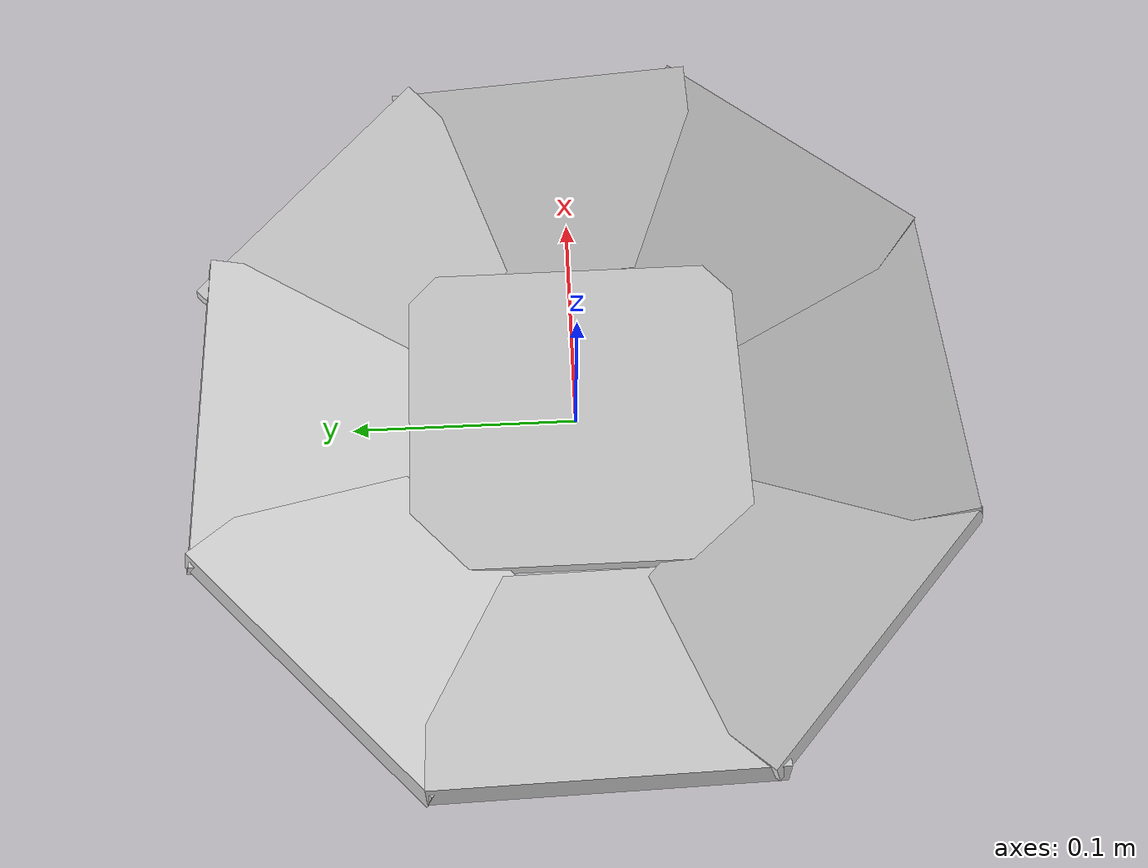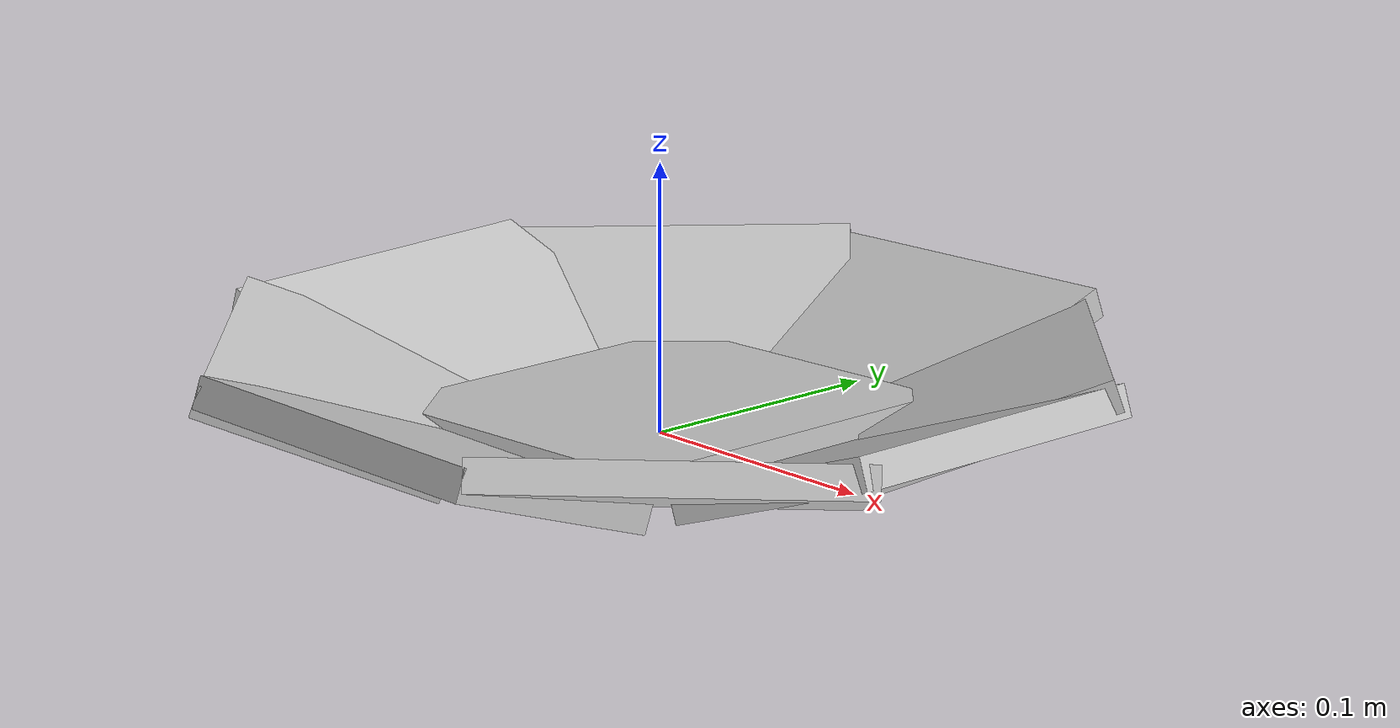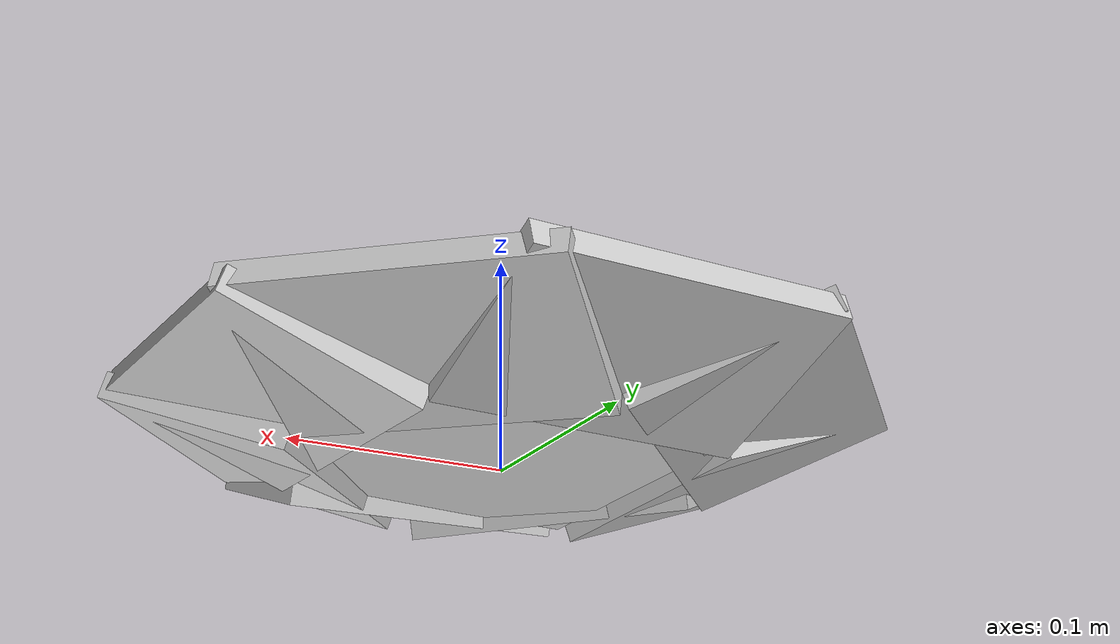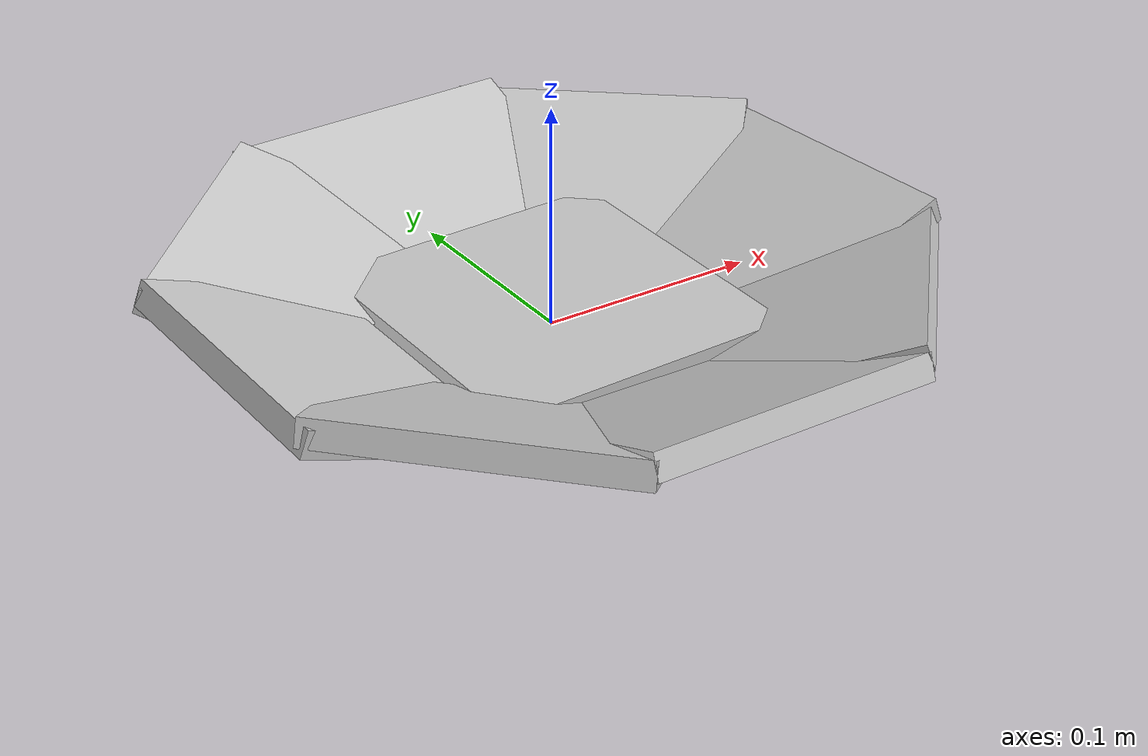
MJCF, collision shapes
<mujoco model="model">
  <asset>
  <texture file="texture.png" name="tex-model" type="2d" />
  <material name="model" reflectance="0.5" texrepeat="1 1" texture="tex-model" texuniform="false" />
  <mesh file="visual/large_plate_vis.msh" name="large_plate_vis" scale="1.2 1.2 1.2" /></asset>
  <worldbody>
    <body>
      <body name="object">
      <geom solimp="0.998 0.998 0.001" solref="0.001 1" density="100" friction="0.95 0.3 0.1" type="mesh" mesh="large_plate_vis" conaffinity="0" contype="0" group="1" material="model" /><geom solimp="0.998 0.998 0.001" solref="0.001 1" density="100" friction="0.95 0.3 0.1" type="box" pos="0 -0 0.007512" quat="0.49356 0.49356 -0.50636 0.50636" size="0.005328 0.068424 0.073368" group="0" rgba="0.8 0.8 0.8 0.3" /><geom solimp="0.998 0.998 0.001" solref="0.001 1" density="100" friction="0.95 0.3 0.1" type="box" pos="-0 0.115872 0.016704" quat="0.70574 0.12139 0.68790 0.11832" size="0.006096 0.045912 0.068424" group="0" rgba="0.8 0.8 0.8 0.3" /><geom solimp="0.998 0.998 0.001" solref="0.001 1" density="100" friction="0.95 0.3 0.1" type="box" pos="-0 0.115872 0.016704" quat="0.70574 0.12139 0.68790 0.11832" size="0.006096 0.045912 0.068424" group="0" rgba="0.8 0.8 0.8 0.3" /><geom solimp="0.998 0.998 0.001" solref="0.001 1" density="100" friction="0.95 0.3 0.1" type="box" pos="0.077688 0.085992 0.016704" quat="0.70114 0.36036 0.59839 -0.14306" size="0.006096 0.045912 0.068424" group="0" rgba="0.8 0.8 0.8 0.3" /><geom solimp="0.998 0.998 0.001" solref="0.001 1" density="100" friction="0.95 0.3 0.1" type="box" pos="0.115632 0.007536 0.016704" quat="0.59590 0.55892 0.41899 -0.39618" size="0.006096 0.045912 0.068424" group="0" rgba="0.8 0.8 0.8 0.3" /><geom solimp="0.998 0.998 0.001" solref="0.001 1" density="100" friction="0.95 0.3 0.1" type="box" pos="0.087792 -0.075648 0.016704" quat="0.67591 -0.40164 0.59224 0.17629" size="0.006096 0.045912 0.068424" group="0" rgba="0.8 0.8 0.8 0.3" /><geom solimp="0.998 0.998 0.001" solref="0.001 1" density="100" friction="0.95 0.3 0.1" type="box" pos="0.00552 -0.115752 0.016704" quat="0.13507 0.69059 -0.10500 -0.70272" size="0.006096 0.045912 0.068424" group="0" rgba="0.8 0.8 0.8 0.3" /><geom solimp="0.998 0.998 0.001" solref="0.001 1" density="100" friction="0.95 0.3 0.1" type="box" pos="-0.080016 -0.083808 0.016704" quat="0.59339 0.15267 0.69911 -0.36855" size="0.006096 0.045912 0.068424" group="0" rgba="0.8 0.8 0.8 0.3" /><geom solimp="0.998 0.998 0.001" solref="0.001 1" density="100" friction="0.95 0.3 0.1" type="box" pos="-0.115848 -0.00312 0.016704" quat="0.40827 0.40746 0.58825 -0.56679" size="0.006096 0.045912 0.068424" group="0" rgba="0.8 0.8 0.8 0.3" /><geom solimp="0.998 0.998 0.001" solref="0.001 1" density="100" friction="0.95 0.3 0.1" type="box" pos="-0.082608 0.081264 0.016704" quat="0.60516 -0.15392 0.68136 0.38190" size="0.006096 0.045912 0.068424" group="0" rgba="0.8 0.8 0.8 0.3" /></body>
      <site rgba="0 0 0 0" size="0.012" pos="0 0 -0.144" name="bottom_site" />
      <site rgba="0 0 0 0" size="0.012" pos="0 0 0.096" name="top_site" />
      <site rgba="0 0 0 0" size="0.012" pos="0.06 0.06 0" name="horizontal_radius_site" />
    </body>
  </worldbody>
</mujoco>
